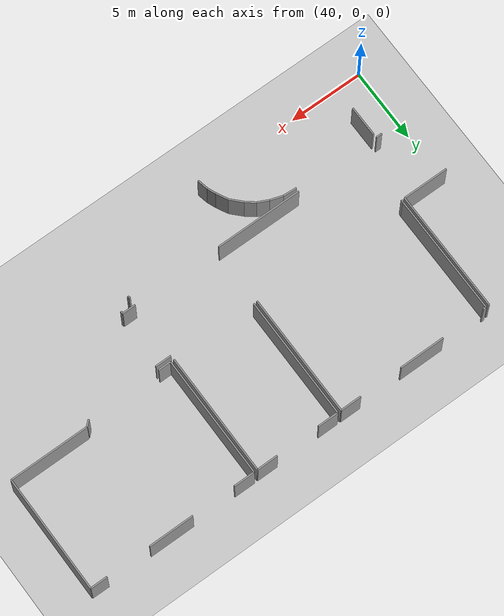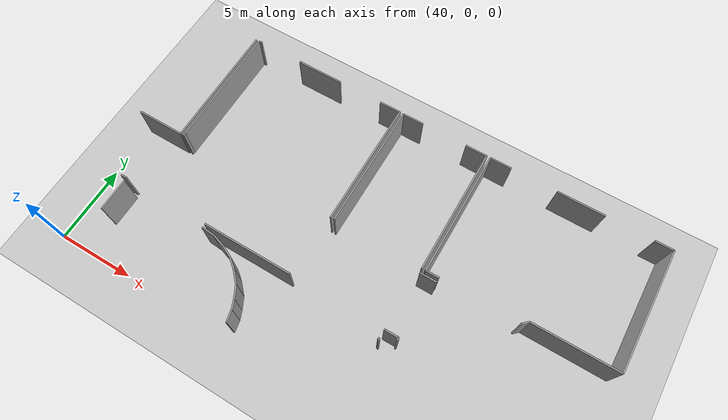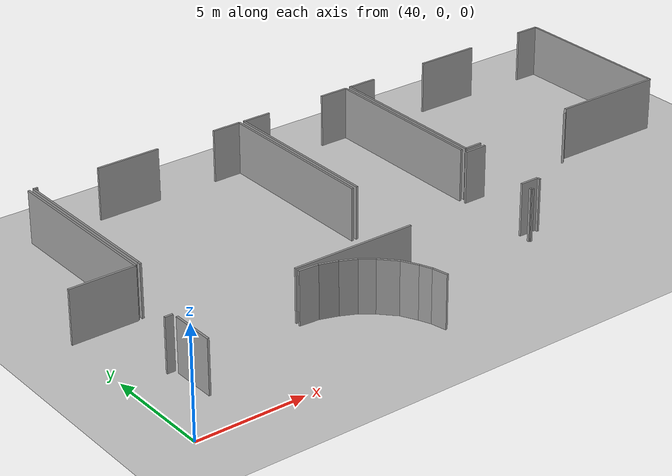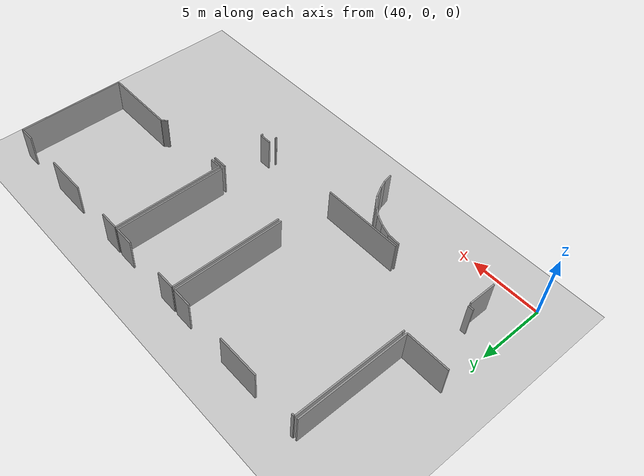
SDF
<sdf version="1.6">
 <world name="default">
  <model name="ground_plane">
   <static>1</static>
   <link name="link">
    <collision name="collision">
     <geometry><plane><normal>0 0 1</normal><size>100 100</size></plane></geometry>
     <surface><friction><ode><mu>100</mu><mu2>50</mu2></ode></friction></surface>
    </collision>
    <visual name="visual">
     <cast_shadows>0</cast_shadows>
     <geometry><plane><normal>0 0 1</normal><size>100 100</size></plane></geometry>
     <material>
      <script><uri>file://media/materials/scripts/gazebo.material</uri><name>Gazebo/Grey</name></script>
     </material>
    </visual>
   </link>
  </model>
  <model name="50041185">
   <static>1</static>
   <link name="Wall_201">
    <collision name="Wall_201_Collision">
     <geometry><box><size>2.06713354262 0.1 2.5</size></box></geometry>
     <pose>1.03356677131 0 1.25 0 0 0</pose>
    </collision>
    <visual name="Wall_201_Visual">
     <pose>1.03356677131 0 1.25 0 0 0</pose>
     <geometry><box><size>2.06713354262 0.1 2.5</size></box></geometry>
     <material>
      <script><uri>file://media/materials/scripts/gazebo.material</uri><name>Gazebo/Grey</name></script>
      <ambient>1 1 1 1</ambient>
     </material>
    </visual>
    <pose>113.905781721 -14.5712324763 0 0 0 1.57079632679</pose>
   </link>
   <link name="Wall_202">
    <collision name="Wall_202_Collision">
     <geometry><box><size>0.919678451312 0.1 2.5</size></box></geometry>
     <pose>0.459839225656 0 1.25 0 0 0</pose>
    </collision>
    <visual name="Wall_202_Visual">
     <pose>0.459839225656 0 1.25 0 0 0</pose>
     <geometry><box><size>0.919678451312 0.1 2.5</size></box></geometry>
     <material>
      <script><uri>file://media/materials/scripts/gazebo.material</uri><name>Gazebo/Grey</name></script>
      <ambient>1 1 1 1</ambient>
     </material>
    </visual>
    <pose>119.612895436 -12.5040989336 0 0 0 -0.0663843064512</pose>
   </link>
   <link name="Wall_203">
    <collision name="Wall_203_Collision">
     <geometry><box><size>0.845908911649 0.1 2.5</size></box></geometry>
     <pose>0.422954455824 0 1.25 0 0 0</pose>
    </collision>
    <visual name="Wall_203_Visual">
     <pose>0.422954455824 0 1.25 0 0 0</pose>
     <geometry><box><size>0.845908911649 0.1 2.5</size></box></geometry>
     <material>
      <script><uri>file://media/materials/scripts/gazebo.material</uri><name>Gazebo/Grey</name></script>
      <ambient>1 1 1 1</ambient>
     </material>
    </visual>
    <pose>120.530548177 -12.5651063181 0 0 0 -0.314053281727</pose>
   </link>
   <link name="Wall_204">
    <collision name="Wall_204_Collision">
     <geometry><box><size>0.781600278254 0.1 2.5</size></box></geometry>
     <pose>0.390800139127 0 1.25 0 0 0</pose>
    </collision>
    <visual name="Wall_204_Visual">
     <pose>0.390800139127 0 1.25 0 0 0</pose>
     <geometry><box><size>0.781600278254 0.1 2.5</size></box></geometry>
     <material>
      <script><uri>file://media/materials/scripts/gazebo.material</uri><name>Gazebo/Grey</name></script>
      <ambient>1 1 1 1</ambient>
     </material>
    </visual>
    <pose>121.335083059 -12.8264212814 0 0 0 -0.452738950818</pose>
   </link>
   <link name="Wall_205">
    <collision name="Wall_205_Collision">
     <geometry><box><size>0.72634113751 0.1 2.5</size></box></geometry>
     <pose>0.363170568755 0 1.25 0 0 0</pose>
    </collision>
    <visual name="Wall_205_Visual">
     <pose>0.363170568755 0 1.25 0 0 0</pose>
     <geometry><box><size>0.72634113751 0.1 2.5</size></box></geometry>
     <material>
      <script><uri>file://media/materials/scripts/gazebo.material</uri><name>Gazebo/Grey</name></script>
      <ambient>1 1 1 1</ambient>
     </material>
    </visual>
    <pose>122.037938967 -13.1683168317 0 0 0 -0.669821873898</pose>
   </link>
   <link name="Wall_206">
    <collision name="Wall_206_Collision">
     <geometry><box><size>0.962055698586 0.1 2.5</size></box></geometry>
     <pose>0.481027849293 0 1.25 0 0 0</pose>
    </collision>
    <visual name="Wall_206_Visual">
     <pose>0.481027849293 0 1.25 0 0 0</pose>
     <geometry><box><size>0.962055698586 0.1 2.5</size></box></geometry>
     <material>
      <script><uri>file://media/materials/scripts/gazebo.material</uri><name>Gazebo/Grey</name></script>
      <ambient>1 1 1 1</ambient>
     </material>
    </visual>
    <pose>122.607341222 -13.6192630816 0 0 0 -0.811651358345</pose>
   </link>
   <link name="Wall_207">
    <collision name="Wall_207_Collision">
     <geometry><box><size>0.824469983768 0.1 2.5</size></box></geometry>
     <pose>0.412234991884 0 1.25 0 0 0</pose>
    </collision>
    <visual name="Wall_207_Visual">
     <pose>0.412234991884 0 1.25 0 0 0</pose>
     <geometry><box><size>0.824469983768 0.1 2.5</size></box></geometry>
     <material>
      <script><uri>file://media/materials/scripts/gazebo.material</uri><name>Gazebo/Grey</name></script>
      <ambient>1 1 1 1</ambient>
     </material>
    </visual>
    <pose>123.26952554 -14.3171621398 0 0 0 -1.09522153933</pose>
   </link>
   <link name="Wall_208">
    <collision name="Wall_208_Collision">
     <geometry><box><size>0.588874570504 0.1 2.5</size></box></geometry>
     <pose>0.294437285252 0 1.25 0 0 0</pose>
    </collision>
    <visual name="Wall_208_Visual">
     <pose>0.294437285252 0 1.25 0 0 0</pose>
     <geometry><box><size>0.588874570504 0.1 2.5</size></box></geometry>
     <material>
      <script><uri>file://media/materials/scripts/gazebo.material</uri><name>Gazebo/Grey</name></script>
      <ambient>1 1 1 1</ambient>
     </material>
    </visual>
    <pose>123.647008732 -15.0501404441 0 0 0 -1.18347642787</pose>
   </link>
   <link name="Wall_209">
    <collision name="Wall_209_Collision">
     <geometry><box><size>0.737607242867 0.1 2.5</size></box></geometry>
     <pose>0.368803621434 0 1.25 0 0 0</pose>
    </collision>
    <visual name="Wall_209_Visual">
     <pose>0.368803621434 0 1.25 0 0 0</pose>
     <geometry><box><size>0.737607242867 0.1 2.5</size></box></geometry>
     <material>
      <script><uri>file://media/materials/scripts/gazebo.material</uri><name>Gazebo/Grey</name></script>
      <ambient>1 1 1 1</ambient>
     </material>
    </visual>
    <pose>123.869431487 -15.5953939425 0 0 0 -1.36251914171</pose>
   </link>
   <link name="Wall_227">
    <collision name="Wall_227_Collision">
     <geometry><box><size>0.1121010689 0.1 2.5</size></box></geometry>
     <pose>0.0560505344501 0 1.25 0 0 0</pose>
    </collision>
    <visual name="Wall_227_Visual">
     <pose>0.0560505344501 0 1.25 0 0 0</pose>
     <geometry><box><size>0.1121010689 0.1 2.5</size></box></geometry>
     <material>
      <script><uri>file://media/materials/scripts/gazebo.material</uri><name>Gazebo/Grey</name></script>
      <ambient>1 1 1 1</ambient>
     </material>
    </visual>
    <pose>131.513148362 -12.7818096315 0 0 0 -1.57079632679</pose>
   </link>
   <link name="Wall_228">
    <collision name="Wall_228_Collision">
     <geometry><box><size>0.100407986883 0.1 2.5</size></box></geometry>
     <pose>0.0502039934417 0 1.25 0 0 0</pose>
    </collision>
    <visual name="Wall_228_Visual">
     <pose>0.0502039934417 0 1.25 0 0 0</pose>
     <geometry><box><size>0.100407986883 0.1 2.5</size></box></geometry>
     <material>
      <script><uri>file://media/materials/scripts/gazebo.material</uri><name>Gazebo/Grey</name></script>
      <ambient>1 1 1 1</ambient>
     </material>
    </visual>
    <pose>131.513148362 -12.8939107004 0 0 0 0.0</pose>
   </link>
   <link name="Wall_351">
    <collision name="Wall_351_Collision">
     <geometry><box><size>8.20117185018 0.1 2.5</size></box></geometry>
     <pose>4.10058592509 0 1.25 0 0 0</pose>
    </collision>
    <visual name="Wall_351_Visual">
     <pose>4.10058592509 0 1.25 0 0 0</pose>
     <geometry><box><size>8.20117185018 0.1 2.5</size></box></geometry>
     <material>
      <script><uri>file://media/materials/scripts/gazebo.material</uri><name>Gazebo/Grey</name></script>
      <ambient>1 1 1 1</ambient>
     </material>
    </visual>
    <pose>114.834237853 -0.0157602409792 0 0 0 -1.57079632679</pose>
   </link>
   <link name="Wall_352">
    <collision name="Wall_352_Collision">
     <geometry><box><size>3.09116791012 0.1 2.5</size></box></geometry>
     <pose>1.54558395506 0 1.25 0 0 0</pose>
    </collision>
    <visual name="Wall_352_Visual">
     <pose>1.54558395506 0 1.25 0 0 0</pose>
     <geometry><box><size>3.09116791012 0.1 2.5</size></box></geometry>
     <material>
      <script><uri>file://media/materials/scripts/gazebo.material</uri><name>Gazebo/Grey</name></script>
      <ambient>1 1 1 1</ambient>
     </material>
    </visual>
    <pose>114.834237853 -8.21693209116 0 0 0 3.14159265359</pose>
   </link>
   <link name="Wall_354">
    <collision name="Wall_354_Collision">
     <geometry><box><size>8.03416413528 0.1 2.5</size></box></geometry>
     <pose>4.01708206764 0 1.25 0 0 0</pose>
    </collision>
    <visual name="Wall_354_Visual">
     <pose>4.01708206764 0 1.25 0 0 0</pose>
     <geometry><box><size>8.03416413528 0.1 2.5</size></box></geometry>
     <material>
      <script><uri>file://media/materials/scripts/gazebo.material</uri><name>Gazebo/Grey</name></script>
      <ambient>1 1 1 1</ambient>
     </material>
    </visual>
    <pose>115.066574308 -8.04204425577 0 0 0 1.57079632679</pose>
   </link>
   <link name="Wall_355">
    <collision name="Wall_355_Collision">
     <geometry><box><size>0.20170566479 0.1 2.5</size></box></geometry>
     <pose>0.100852832395 0 1.25 0 0 0</pose>
    </collision>
    <visual name="Wall_355_Visual">
     <pose>0.100852832395 0 1.25 0 0 0</pose>
     <geometry><box><size>0.20170566479 0.1 2.5</size></box></geometry>
     <material>
      <script><uri>file://media/materials/scripts/gazebo.material</uri><name>Gazebo/Grey</name></script>
      <ambient>1 1 1 1</ambient>
     </material>
    </visual>
    <pose>115.066574308 -0.00788012048958 0 0 0 0.0</pose>
   </link>
   <link name="Wall_356">
    <collision name="Wall_356_Collision">
     <geometry><box><size>3.07197600376 0.1 2.5</size></box></geometry>
     <pose>1.53598800188 0 1.25 0 0 0</pose>
    </collision>
    <visual name="Wall_356_Visual">
     <pose>1.53598800188 0 1.25 0 0 0</pose>
     <geometry><box><size>3.07197600376 0.1 2.5</size></box></geometry>
     <material>
      <script><uri>file://media/materials/scripts/gazebo.material</uri><name>Gazebo/Grey</name></script>
      <ambient>1 1 1 1</ambient>
     </material>
    </visual>
    <pose>118.223706453 -0.00788012048958 0 0 0 0.0</pose>
   </link>
   <link name="Wall_357">
    <collision name="Wall_357_Collision">
     <geometry><box><size>1.40571181637 0.1 2.5</size></box></geometry>
     <pose>0.702855908184 0 1.25 0 0 0</pose>
    </collision>
    <visual name="Wall_357_Visual">
     <pose>0.702855908184 0 1.25 0 0 0</pose>
     <geometry><box><size>1.40571181637 0.1 2.5</size></box></geometry>
     <material>
      <script><uri>file://media/materials/scripts/gazebo.material</uri><name>Gazebo/Grey</name></script>
      <ambient>1 1 1 1</ambient>
     </material>
    </visual>
    <pose>124.230391845 -0.00788012048958 0 0 0 0.0</pose>
   </link>
   <link name="Wall_358">
    <collision name="Wall_358_Collision">
     <geometry><box><size>8.21705918987 0.1 2.5</size></box></geometry>
     <pose>4.10852959494 0 1.25 0 0 0</pose>
    </collision>
    <visual name="Wall_358_Visual">
     <pose>4.10852959494 0 1.25 0 0 0</pose>
     <geometry><box><size>8.21705918987 0.1 2.5</size></box></geometry>
     <material>
      <script><uri>file://media/materials/scripts/gazebo.material</uri><name>Gazebo/Grey</name></script>
      <ambient>1 1 1 1</ambient>
     </material>
    </visual>
    <pose>125.636103662 -0.00788012048958 0 0 0 -1.57079632679</pose>
   </link>
   <link name="Wall_359">
    <collision name="Wall_359_Collision">
     <geometry><box><size>0.182996775935 0.1 2.5</size></box></geometry>
     <pose>0.0914983879675 0 1.25 0 0 0</pose>
    </collision>
    <visual name="Wall_359_Visual">
     <pose>0.0914983879675 0 1.25 0 0 0</pose>
     <geometry><box><size>0.182996775935 0.1 2.5</size></box></geometry>
     <material>
      <script><uri>file://media/materials/scripts/gazebo.material</uri><name>Gazebo/Grey</name></script>
      <ambient>1 1 1 1</ambient>
     </material>
    </visual>
    <pose>115.06047357 -8.22493931036 0 0 0 1.53745219241</pose>
   </link>
   <link name="Wall_360">
    <collision name="Wall_360_Collision">
     <geometry><box><size>8.20256993607 0.1 2.5</size></box></geometry>
     <pose>4.10128496803 0 1.25 0 0 0</pose>
    </collision>
    <visual name="Wall_360_Visual">
     <pose>4.10128496803 0 1.25 0 0 0</pose>
     <geometry><box><size>8.20256993607 0.1 2.5</size></box></geometry>
     <material>
      <script><uri>file://media/materials/scripts/gazebo.material</uri><name>Gazebo/Grey</name></script>
      <ambient>1 1 1 1</ambient>
     </material>
    </visual>
    <pose>125.880133199 -8.22150764499 0 0 0 1.57079632679</pose>
   </link>
   <link name="Wall_361">
    <collision name="Wall_361_Collision">
     <geometry><box><size>1.39173095743 0.1 2.5</size></box></geometry>
     <pose>0.695865478717 0 1.25 0 0 0</pose>
    </collision>
    <visual name="Wall_361_Visual">
     <pose>0.695865478717 0 1.25 0 0 0</pose>
     <geometry><box><size>1.39173095743 0.1 2.5</size></box></geometry>
     <material>
      <script><uri>file://media/materials/scripts/gazebo.material</uri><name>Gazebo/Grey</name></script>
      <ambient>1 1 1 1</ambient>
     </material>
    </visual>
    <pose>125.880133199 -0.0189377089185 0 0 0 0.0</pose>
   </link>
   <link name="Wall_362">
    <collision name="Wall_362_Collision">
     <geometry><box><size>1.40825379072 0.1 2.5</size></box></geometry>
     <pose>0.70412689536 0 1.25 0 0 0</pose>
    </collision>
    <visual name="Wall_362_Visual">
     <pose>0.70412689536 0 1.25 0 0 0</pose>
     <geometry><box><size>1.40825379072 0.1 2.5</size></box></geometry>
     <material>
      <script><uri>file://media/materials/scripts/gazebo.material</uri><name>Gazebo/Grey</name></script>
      <ambient>1 1 1 1</ambient>
     </material>
    </visual>
    <pose>130.230722302 -0.0189377089185 0 0 0 0.0</pose>
   </link>
   <link name="Wall_363">
    <collision name="Wall_363_Collision">
     <geometry><box><size>8.20879777323 0.1 2.5</size></box></geometry>
     <pose>4.10439888662 0 1.25 0 0 0</pose>
    </collision>
    <visual name="Wall_363_Visual">
     <pose>4.10439888662 0 1.25 0 0 0</pose>
     <geometry><box><size>8.20879777323 0.1 2.5</size></box></geometry>
     <material>
      <script><uri>file://media/materials/scripts/gazebo.material</uri><name>Gazebo/Grey</name></script>
      <ambient>1 1 1 1</ambient>
     </material>
    </visual>
    <pose>131.638976093 -0.0189377089185 0 0 0 -1.57079632679</pose>
   </link>
   <link name="Wall_364">
    <collision name="Wall_364_Collision">
     <geometry><box><size>8.21642369628 0.1 2.5</size></box></geometry>
     <pose>4.10821184814 0 1.25 0 0 0</pose>
    </collision>
    <visual name="Wall_364_Visual">
     <pose>4.10821184814 0 1.25 0 0 0</pose>
     <geometry><box><size>8.21642369628 0.1 2.5</size></box></geometry>
     <material>
      <script><uri>file://media/materials/scripts/gazebo.material</uri><name>Gazebo/Grey</name></script>
      <ambient>1 1 1 1</ambient>
     </material>
    </visual>
    <pose>131.880463656 -8.23218393726 0 0 0 1.57079632679</pose>
   </link>
   <link name="Wall_365">
    <collision name="Wall_365_Collision">
     <geometry><box><size>1.41079576507 0.1 2.5</size></box></geometry>
     <pose>0.705397882535 0 1.25 0 0 0</pose>
    </collision>
    <visual name="Wall_365_Visual">
     <pose>0.705397882535 0 1.25 0 0 0</pose>
     <geometry><box><size>1.41079576507 0.1 2.5</size></box></geometry>
     <material>
      <script><uri>file://media/materials/scripts/gazebo.material</uri><name>Gazebo/Grey</name></script>
      <ambient>1 1 1 1</ambient>
     </material>
    </visual>
    <pose>131.880463656 -0.0157602409792 0 0 0 0.0</pose>
   </link>
   <link name="Wall_366">
    <collision name="Wall_366_Collision">
     <geometry><box><size>3.04147231154 0.1 2.5</size></box></geometry>
     <pose>1.52073615577 0 1.25 0 0 0</pose>
    </collision>
    <visual name="Wall_366_Visual">
     <pose>1.52073615577 0 1.25 0 0 0</pose>
     <geometry><box><size>3.04147231154 0.1 2.5</size></box></geometry>
     <material>
      <script><uri>file://media/materials/scripts/gazebo.material</uri><name>Gazebo/Grey</name></script>
      <ambient>1 1 1 1</ambient>
     </material>
    </visual>
    <pose>136.241220656 -0.0157602409792 0 0 0 0.0</pose>
   </link>
   <link name="Wall_367">
    <collision name="Wall_367_Collision">
     <geometry><box><size>1.14770141969 0.1 2.5</size></box></geometry>
     <pose>0.573850709846 0 1.25 0 0 0</pose>
    </collision>
    <visual name="Wall_367_Visual">
     <pose>0.573850709846 0 1.25 0 0 0</pose>
     <geometry><box><size>1.14770141969 0.1 2.5</size></box></geometry>
     <material>
      <script><uri>file://media/materials/scripts/gazebo.material</uri><name>Gazebo/Grey</name></script>
      <ambient>1 1 1 1</ambient>
     </material>
    </visual>
    <pose>142.266970856 -0.0157602409792 0 0 0 0.0</pose>
   </link>
   <link name="Wall_368">
    <collision name="Wall_368_Collision">
     <geometry><box><size>7.88558573444 0.1 2.5</size></box></geometry>
     <pose>3.94279286722 0 1.25 0 0 0</pose>
    </collision>
    <visual name="Wall_368_Visual">
     <pose>3.94279286722 0 1.25 0 0 0</pose>
     <geometry><box><size>7.88558573444 0.1 2.5</size></box></geometry>
     <material>
      <script><uri>file://media/materials/scripts/gazebo.material</uri><name>Gazebo/Grey</name></script>
      <ambient>1 1 1 1</ambient>
     </material>
    </visual>
    <pose>143.414672276 -0.0157602409792 0 0 0 -1.57079632679</pose>
   </link>
   <link name="Wall_369">
    <collision name="Wall_369_Collision">
     <geometry><box><size>5.34068811246 0.1 2.5</size></box></geometry>
     <pose>2.67034405623 0 1.25 0 0 0</pose>
    </collision>
    <visual name="Wall_369_Visual">
     <pose>2.67034405623 0 1.25 0 0 0</pose>
     <geometry><box><size>5.34068811246 0.1 2.5</size></box></geometry>
     <material>
      <script><uri>file://media/materials/scripts/gazebo.material</uri><name>Gazebo/Grey</name></script>
      <ambient>1 1 1 1</ambient>
     </material>
    </visual>
    <pose>143.414672276 -7.90134597542 0 0 0 3.14159265359</pose>
   </link>
   <link name="Wall_370">
    <collision name="Wall_370_Collision">
     <geometry><box><size>0.469586057394 0.1 2.5</size></box></geometry>
     <pose>0.234793028697 0 1.25 0 0 0</pose>
    </collision>
    <visual name="Wall_370_Visual">
     <pose>0.234793028697 0 1.25 0 0 0</pose>
     <geometry><box><size>0.469586057394 0.1 2.5</size></box></geometry>
     <material>
      <script><uri>file://media/materials/scripts/gazebo.material</uri><name>Gazebo/Grey</name></script>
      <ambient>1 1 1 1</ambient>
     </material>
    </visual>
    <pose>138.073984163 -7.90134597542 0 0 0 -2.39026785461</pose>
   </link>
   <link name="Wall_371">
    <collision name="Wall_371_Collision">
     <geometry><box><size>0.855436320572 0.1 2.5</size></box></geometry>
     <pose>0.427718160286 0 1.25 0 0 0</pose>
    </collision>
    <visual name="Wall_371_Visual">
     <pose>0.427718160286 0 1.25 0 0 0</pose>
     <geometry><box><size>0.855436320572 0.1 2.5</size></box></geometry>
     <material>
      <script><uri>file://media/materials/scripts/gazebo.material</uri><name>Gazebo/Grey</name></script>
      <ambient>1 1 1 1</ambient>
     </material>
    </visual>
    <pose>132.735838025 -8.22188894114 0 0 0 -3.12955757347</pose>
   </link>
   <link name="Wall_414">
    <collision name="Wall_414_Collision">
     <geometry><box><size>1.0790681122 0.1 2.5</size></box></geometry>
     <pose>0.539534056101 0 1.25 0 0 0</pose>
    </collision>
    <visual name="Wall_414_Visual">
     <pose>0.539534056101 0 1.25 0 0 0</pose>
     <geometry><box><size>1.0790681122 0.1 2.5</size></box></geometry>
     <material>
      <script><uri>file://media/materials/scripts/gazebo.material</uri><name>Gazebo/Grey</name></script>
      <ambient>1 1 1 1</ambient>
     </material>
    </visual>
    <pose>131.656769913 -8.50646296979 0 0 0 0.0</pose>
   </link>
   <link name="Wall_415">
    <collision name="Wall_415_Collision">
     <geometry><box><size>0.16395734567 0.1 2.5</size></box></geometry>
     <pose>0.0819786728352 0 1.25 0 0 0</pose>
    </collision>
    <visual name="Wall_415_Visual">
     <pose>0.0819786728352 0 1.25 0 0 0</pose>
     <geometry><box><size>0.16395734567 0.1 2.5</size></box></geometry>
     <material>
      <script><uri>file://media/materials/scripts/gazebo.material</uri><name>Gazebo/Grey</name></script>
      <ambient>1 1 1 1</ambient>
     </material>
    </visual>
    <pose>132.416820244 -12.4241538403 0 0 0 1.57079632679</pose>
   </link>
   <link name="Wall_416">
    <collision name="Wall_416_Collision">
     <geometry><box><size>0.902400894775 0.1 2.5</size></box></geometry>
     <pose>0.451200447387 0 1.25 0 0 0</pose>
    </collision>
    <visual name="Wall_416_Visual">
     <pose>0.451200447387 0 1.25 0 0 0</pose>
     <geometry><box><size>0.902400894775 0.1 2.5</size></box></geometry>
     <material>
      <script><uri>file://media/materials/scripts/gazebo.material</uri><name>Gazebo/Grey</name></script>
      <ambient>1 1 1 1</ambient>
     </material>
    </visual>
    <pose>132.416820244 -12.2601964946 0 0 0 3.14159265359</pose>
   </link>
   <link name="Wall_417">
    <collision name="Wall_417_Collision">
     <geometry><box><size>5.85035396993 0.1 2.5</size></box></geometry>
     <pose>2.92517698496 0 1.25 0 0 0</pose>
    </collision>
    <visual name="Wall_417_Visual">
     <pose>2.92517698496 0 1.25 0 0 0</pose>
     <geometry><box><size>5.85035396993 0.1 2.5</size></box></geometry>
     <material>
      <script><uri>file://media/materials/scripts/gazebo.material</uri><name>Gazebo/Grey</name></script>
      <ambient>1 1 1 1</ambient>
     </material>
    </visual>
    <pose>125.47468829 -12.2601964946 0 0 0 3.14159265359</pose>
   </link>
   <link name="Wall_418">
    <collision name="Wall_418_Collision">
     <geometry><box><size>0.382185843745 0.1 2.5</size></box></geometry>
     <pose>0.191092921872 0 1.25 0 0 0</pose>
    </collision>
    <visual name="Wall_418_Visual">
     <pose>0.191092921872 0 1.25 0 0 0</pose>
     <geometry><box><size>0.382185843745 0.1 2.5</size></box></geometry>
     <material>
      <script><uri>file://media/materials/scripts/gazebo.material</uri><name>Gazebo/Grey</name></script>
      <ambient>1 1 1 1</ambient>
     </material>
    </visual>
    <pose>113.872736054 -12.2601964946 0 0 0 3.14159265359</pose>
   </link>
   <pose>-71.7 16.7921910548 0 0 0 0</pose>
  </model>
 </world>
</sdf>
